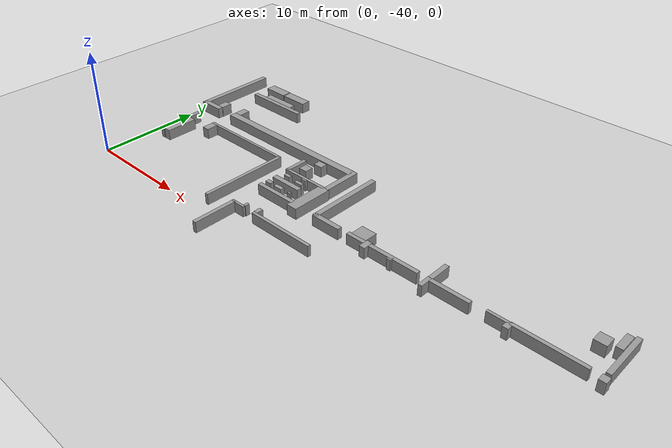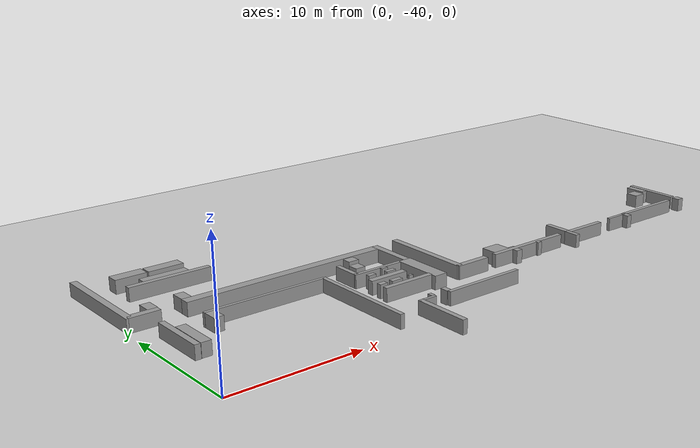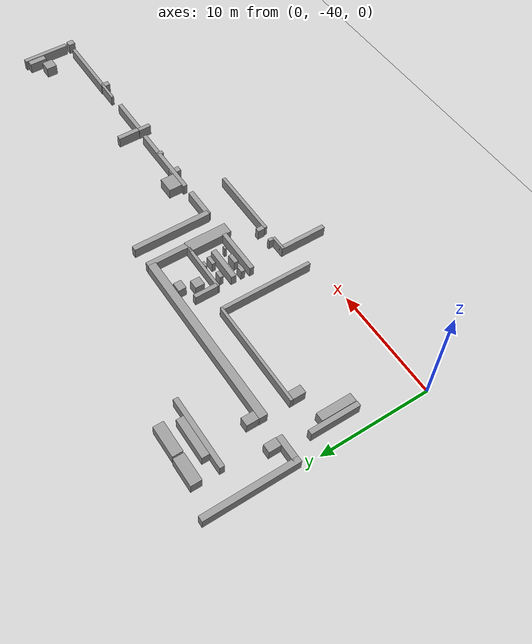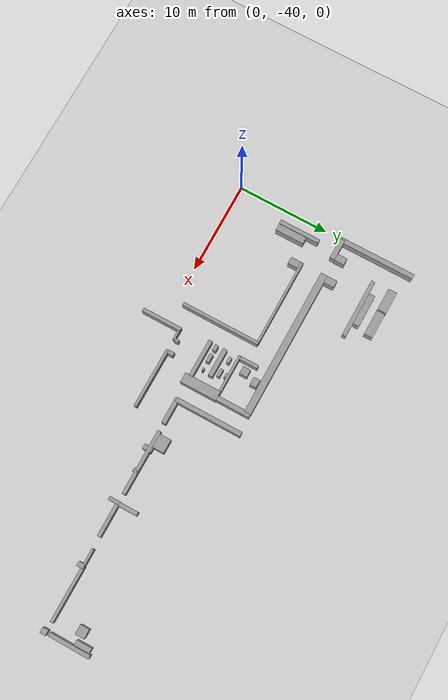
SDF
<sdf version="1.4">
 <world name="default">
  <model name="ground_plane">
   <static>1</static>
   <link name="link">
    <collision name="collision">
     <geometry><plane><normal>0 0 1</normal><size>300 300</size></plane></geometry>
     <surface><friction><ode><mu>100</mu><mu2>50</mu2></ode></friction></surface>
    </collision>
    <visual name="visual">
     <cast_shadows>0</cast_shadows>
     <geometry><plane><normal>0 0 1</normal><size>300 300</size></plane></geometry>
     <material>
      <script><uri>file://media/materials/scripts/gazebo.material</uri><name>Gazebo/Grey</name></script>
     </material>
    </visual>
    <velocity_decay><linear>0</linear><angular>0</angular></velocity_decay>
   </link>
  </model>
  <model name="wall_rect3549">
   <static>1</static>
   <link name="link">
    <pose>0.3355228053052943 -24.17355341555266 0 0 -0 0</pose>
    <collision name="collision">
     <geometry><box><size>0.51425949219405 8.382429670205694 2.0</size></box></geometry>
    </collision>
    <visual name="visual">
     <cast_shadows>0</cast_shadows>
     <geometry><box><size>0.51425949219405 8.382429670205694 2.0</size></box></geometry>
     <material>
      <script>
       <uri>model://grey_wall/materials/scripts</uri>
       <uri>model://grey_wall/materials/textures</uri>
       <name>vrc/grey_wall</name>
      </script>
     </material>
    </visual>
    <velocity_decay><linear>0</linear><angular>0</angular></velocity_decay>
   </link>
  </model>
  <model name="wall_rect3551">
   <static>1</static>
   <link name="link">
    <pose>1.4128834767488212 -28.0947834555603 0 0 -0 0</pose>
    <collision name="collision">
     <geometry><box><size>2.308999173986113 0.5399724700435873 2.0</size></box></geometry>
    </collision>
    <visual name="visual">
     <cast_shadows>0</cast_shadows>
     <geometry><box><size>2.308999173986113 0.5399724700435873 2.0</size></box></geometry>
     <material>
      <script>
       <uri>model://grey_wall/materials/scripts</uri>
       <uri>model://grey_wall/materials/textures</uri>
       <name>vrc/grey_wall</name>
      </script>
     </material>
    </visual>
    <velocity_decay><linear>0</linear><angular>0</angular></velocity_decay>
   </link>
  </model>
  <model name="wall_rect3553">
   <static>1</static>
   <link name="link">
    <pose>12.551124197483915 -28.017644500412786 0 0 -0 0</pose>
    <collision name="collision">
     <geometry><box><size>16.246724077019657 0.7456762064442906 2.0</size></box></geometry>
    </collision>
    <visual name="visual">
     <cast_shadows>0</cast_shadows>
     <geometry><box><size>16.246724077019657 0.7456762064442906 2.0</size></box></geometry>
     <material>
      <script>
       <uri>model://grey_wall/materials/scripts</uri>
       <uri>model://grey_wall/materials/textures</uri>
       <name>vrc/grey_wall</name>
      </script>
     </material>
    </visual>
    <velocity_decay><linear>0</linear><angular>0</angular></velocity_decay>
   </link>
  </model>
  <model name="wall_rect3555">
   <static>1</static>
   <link name="link">
    <pose>9.212926984130641 -30.550371205874438 0 0 -0 0</pose>
    <collision name="collision">
     <geometry><box><size>9.603795560087166 0.25712974249720855 2.0</size></box></geometry>
    </collision>
    <visual name="visual">
     <cast_shadows>0</cast_shadows>
     <geometry><box><size>9.603795560087166 0.25712974249720855 2.0</size></box></geometry>
     <material>
      <script>
       <uri>model://grey_wall/materials/scripts</uri>
       <uri>model://grey_wall/materials/textures</uri>
       <name>vrc/grey_wall</name>
      </script>
     </material>
    </visual>
    <velocity_decay><linear>0</linear><angular>0</angular></velocity_decay>
   </link>
  </model>
  <model name="wall_rect3557">
   <static>1</static>
   <link name="link">
    <pose>1.608315158459961 -32.37599107447106 0 0 -0 0</pose>
    <collision name="collision">
     <geometry><box><size>0.4371205874439697 4.4740575986473905 2.0</size></box></geometry>
    </collision>
    <visual name="visual">
     <cast_shadows>0</cast_shadows>
     <geometry><box><size>0.4371205874439697 4.4740575986473905 2.0</size></box></geometry>
     <material>
      <script>
       <uri>model://grey_wall/materials/scripts</uri>
       <uri>model://grey_wall/materials/textures</uri>
       <name>vrc/grey_wall</name>
      </script>
     </material>
    </visual>
    <velocity_decay><linear>0</linear><angular>0</angular></velocity_decay>
   </link>
  </model>
  <model name="wall_rect3559">
   <static>1</static>
   <link name="link">
    <pose>2.235430984786672 -33.01002779274302 0 0 -0 0</pose>
    <collision name="collision">
     <geometry><box><size>0.7506231462295126 3.1391887036031356 2.0</size></box></geometry>
    </collision>
    <visual name="visual">
     <cast_shadows>0</cast_shadows>
     <geometry><box><size>0.7506231462295126 3.1391887036031356 2.0</size></box></geometry>
     <material>
      <script>
       <uri>model://grey_wall/materials/scripts</uri>
       <uri>model://grey_wall/materials/textures</uri>
       <name>vrc/grey_wall</name>
      </script>
     </material>
    </visual>
    <velocity_decay><linear>0</linear><angular>0</angular></velocity_decay>
   </link>
  </model>
  <model name="wall_rect3561">
   <static>1</static>
   <link name="link">
    <pose>4.7867030267328845 -31.250355715864185 0 0 -0 0</pose>
    <collision name="collision">
     <geometry><box><size>0.7456762064442906 1.141013234581248 2.0</size></box></geometry>
    </collision>
    <visual name="visual">
     <cast_shadows>0</cast_shadows>
     <geometry><box><size>0.7456762064442906 1.141013234581248 2.0</size></box></geometry>
     <material>
      <script>
       <uri>model://grey_wall/materials/scripts</uri>
       <uri>model://grey_wall/materials/textures</uri>
       <name>vrc/grey_wall</name>
      </script>
     </material>
    </visual>
    <velocity_decay><linear>0</linear><angular>0</angular></velocity_decay>
   </link>
  </model>
  <model name="wall_rect3563">
   <static>1</static>
   <link name="link">
    <pose>4.829589656200969 -27.093271388651523 0 0 -0 0</pose>
    <collision name="collision">
     <geometry><box><size>0.7713892634897902 1.1056578531400154 2.0</size></box></geometry>
    </collision>
    <visual name="visual">
     <cast_shadows>0</cast_shadows>
     <geometry><box><size>0.7713892634897902 1.1056578531400154 2.0</size></box></geometry>
     <material>
      <script>
       <uri>model://grey_wall/materials/scripts</uri>
       <uri>model://grey_wall/materials/textures</uri>
       <name>vrc/grey_wall</name>
      </script>
     </material>
    </visual>
    <velocity_decay><linear>0</linear><angular>0</angular></velocity_decay>
   </link>
  </model>
  <model name="wall_rect3565">
   <static>1</static>
   <link name="link">
    <pose>2.2303731346561024 -27.28831880435408 0 0 -0 0</pose>
    <collision name="collision">
     <geometry><box><size>0.7456762064442906 1.1056578531400154 2.0</size></box></geometry>
    </collision>
    <visual name="visual">
     <cast_shadows>0</cast_shadows>
     <geometry><box><size>0.7456762064442906 1.1056578531400154 2.0</size></box></geometry>
     <material>
      <script>
       <uri>model://grey_wall/materials/scripts</uri>
       <uri>model://grey_wall/materials/textures</uri>
       <name>vrc/grey_wall</name>
      </script>
     </material>
    </visual>
    <velocity_decay><linear>0</linear><angular>0</angular></velocity_decay>
   </link>
  </model>
  <model name="wall_rect3567">
   <static>1</static>
   <link name="link">
    <pose>5.915773474205191 -23.313997835934334 0 0 -0 0</pose>
    <collision name="collision">
     <geometry><box><size>6.428243598428378 0.4371205874439697 2.0</size></box></geometry>
    </collision>
    <visual name="visual">
     <cast_shadows>0</cast_shadows>
     <geometry><box><size>6.428243598428378 0.4371205874439697 2.0</size></box></geometry>
     <material>
      <script>
       <uri>model://grey_wall/materials/scripts</uri>
       <uri>model://grey_wall/materials/textures</uri>
       <name>vrc/grey_wall</name>
      </script>
     </material>
    </visual>
    <velocity_decay><linear>0</linear><angular>0</angular></velocity_decay>
   </link>
  </model>
  <model name="wall_rect3569">
   <static>1</static>
   <link name="link">
    <pose>5.812007828592867 -22.76557894732295 0 0 -0 0</pose>
    <collision name="collision">
     <geometry><box><size>3.5741034819080784 0.6685373304927421 2.0</size></box></geometry>
    </collision>
    <visual name="visual">
     <cast_shadows>0</cast_shadows>
     <geometry><box><size>3.5741034819080784 0.6685373304927421 2.0</size></box></geometry>
     <material>
      <script>
       <uri>model://grey_wall/materials/scripts</uri>
       <uri>model://grey_wall/materials/textures</uri>
       <name>vrc/grey_wall</name>
      </script>
     </material>
    </visual>
    <velocity_decay><linear>0</linear><angular>0</angular></velocity_decay>
   </link>
  </model>
  <model name="wall_rect3582">
   <static>1</static>
   <link name="link">
    <pose>3.8804151049162914 -21.13242839227085 0 0 -0 0</pose>
    <collision name="collision">
     <geometry><box><size>2.442732499726234 0.9770929998904935 2.0</size></box></geometry>
    </collision>
    <visual name="visual">
     <cast_shadows>0</cast_shadows>
     <geometry><box><size>2.442732499726234 0.9770929998904935 2.0</size></box></geometry>
     <material>
      <script>
       <uri>model://grey_wall/materials/scripts</uri>
       <uri>model://grey_wall/materials/textures</uri>
       <name>vrc/grey_wall</name>
      </script>
     </material>
    </visual>
    <velocity_decay><linear>0</linear><angular>0</angular></velocity_decay>
   </link>
  </model>
  <model name="wall_rect3584">
   <static>1</static>
   <link name="link">
    <pose>6.6126079827946045 -21.16255144047736 0 0 -0 0</pose>
    <collision name="collision">
     <geometry><box><size>2.7770013773617763 0.925667029792153 2.0</size></box></geometry>
    </collision>
    <visual name="visual">
     <cast_shadows>0</cast_shadows>
     <geometry><box><size>2.7770013773617763 0.925667029792153 2.0</size></box></geometry>
     <material>
      <script>
       <uri>model://grey_wall/materials/scripts</uri>
       <uri>model://grey_wall/materials/textures</uri>
       <name>vrc/grey_wall</name>
      </script>
     </material>
    </visual>
    <velocity_decay><linear>0</linear><angular>0</angular></velocity_decay>
   </link>
  </model>
  <model name="wall_rect3586">
   <static>1</static>
   <link name="link">
    <pose>16.12328997018416 -30.383238512967655 0 0 -0 0</pose>
    <collision name="collision">
     <geometry><box><size>0.35998164669572486 2.134176895125179 2.0</size></box></geometry>
    </collision>
    <visual name="visual">
     <cast_shadows>0</cast_shadows>
     <geometry><box><size>0.35998164669572486 2.134176895125179 2.0</size></box></geometry>
     <material>
      <script>
       <uri>model://grey_wall/materials/scripts</uri>
       <uri>model://grey_wall/materials/textures</uri>
       <name>vrc/grey_wall</name>
      </script>
     </material>
    </visual>
    <velocity_decay><linear>0</linear><angular>0</angular></velocity_decay>
   </link>
  </model>
  <model name="wall_rect3588">
   <static>1</static>
   <link name="link">
    <pose>17.64035551211457 -28.853315902542022 0 0 -0 0</pose>
    <collision name="collision">
     <geometry><box><size>0.8742412036864713 0.7199632933914497 2.0</size></box></geometry>
    </collision>
    <visual name="visual">
     <cast_shadows>0</cast_shadows>
     <geometry><box><size>0.8742412036864713 0.7199632933914497 2.0</size></box></geometry>
     <material>
      <script>
       <uri>model://grey_wall/materials/scripts</uri>
       <uri>model://grey_wall/materials/textures</uri>
       <name>vrc/grey_wall</name>
      </script>
     </material>
    </visual>
    <velocity_decay><linear>0</linear><angular>0</angular></velocity_decay>
   </link>
  </model>
  <model name="wall_rect3590">
   <static>1</static>
   <link name="link">
    <pose>17.151809084165652 -30.22896035068548 0 0 -0 0</pose>
    <collision name="collision">
     <geometry><box><size>0.8228152335881308 0.8485281466409716 2.0</size></box></geometry>
    </collision>
    <visual name="visual">
     <cast_shadows>0</cast_shadows>
     <geometry><box><size>0.8228152335881308 0.8485281466409716 2.0</size></box></geometry>
     <material>
      <script>
       <uri>model://grey_wall/materials/scripts</uri>
       <uri>model://grey_wall/materials/textures</uri>
       <name>vrc/grey_wall</name>
      </script>
     </material>
    </visual>
    <velocity_decay><linear>0</linear><angular>0</angular></velocity_decay>
   </link>
  </model>
  <model name="wall_rect3592">
   <static>1</static>
   <link name="link">
    <pose>17.640354972142102 -33.05738726976743 0 0 -0 0</pose>
    <collision name="collision">
     <geometry><box><size>3.0855569819628315 0.4885465071448797 2.0</size></box></geometry>
    </collision>
    <visual name="visual">
     <cast_shadows>0</cast_shadows>
     <geometry><box><size>3.0855569819628315 0.4885465071448797 2.0</size></box></geometry>
     <material>
      <script>
       <uri>model://grey_wall/materials/scripts</uri>
       <uri>model://grey_wall/materials/textures</uri>
       <name>vrc/grey_wall</name>
      </script>
     </material>
    </visual>
    <velocity_decay><linear>0</linear><angular>0</angular></velocity_decay>
   </link>
  </model>
  <model name="wall_rect3594">
   <static>1</static>
   <link name="link">
    <pose>13.976255650181932 -34.76729994397965 0 0 -0 0</pose>
    <collision name="collision">
     <geometry><box><size>0.3342686688461875 8.588133262613738 2.0</size></box></geometry>
    </collision>
    <visual name="visual">
     <cast_shadows>0</cast_shadows>
     <geometry><box><size>0.3342686688461875 8.588133262613738 2.0</size></box></geometry>
     <material>
      <script>
       <uri>model://grey_wall/materials/scripts</uri>
       <uri>model://grey_wall/materials/textures</uri>
       <name>vrc/grey_wall</name>
      </script>
     </material>
    </visual>
    <velocity_decay><linear>0</linear><angular>0</angular></velocity_decay>
   </link>
  </model>
  <model name="wall_rect3596">
   <static>1</static>
   <link name="link">
    <pose>18.090332642480554 -34.76729907642389 0 0 -0 0</pose>
    <collision name="collision">
     <geometry><box><size>4.139788937000836 0.41140760959443246 2.0</size></box></geometry>
    </collision>
    <visual name="visual">
     <cast_shadows>0</cast_shadows>
     <geometry><box><size>4.139788937000836 0.41140760959443246 2.0</size></box></geometry>
     <material>
      <script>
       <uri>model://grey_wall/materials/scripts</uri>
       <uri>model://grey_wall/materials/textures</uri>
       <name>vrc/grey_wall</name>
      </script>
     </material>
    </visual>
    <velocity_decay><linear>0</linear><angular>0</angular></velocity_decay>
   </link>
  </model>
  <model name="wall_rect3598">
   <static>1</static>
   <link name="link">
    <pose>16.431845657580993 -33.983053032424195 0 0 -0 0</pose>
    <collision name="collision">
     <geometry><box><size>0.6171113747936674 0.3856946245452622 2.0</size></box></geometry>
    </collision>
    <visual name="visual">
     <cast_shadows>0</cast_shadows>
     <geometry><box><size>0.6171113747936674 0.3856946245452622 2.0</size></box></geometry>
     <material>
      <script>
       <uri>model://grey_wall/materials/scripts</uri>
       <uri>model://grey_wall/materials/textures</uri>
       <name>vrc/grey_wall</name>
      </script>
     </material>
    </visual>
    <velocity_decay><linear>0</linear><angular>0</angular></velocity_decay>
   </link>
  </model>
  <model name="wall_rect3600">
   <static>1</static>
   <link name="link">
    <pose>17.627498479617515 -34.00876796137426 0 0 -0 0</pose>
    <collision name="collision">
     <geometry><box><size>0.8999541167393121 0.3856946245452622 2.0</size></box></geometry>
    </collision>
    <visual name="visual">
     <cast_shadows>0</cast_shadows>
     <geometry><box><size>0.8999541167393121 0.3856946245452622 2.0</size></box></geometry>
     <material>
      <script>
       <uri>model://grey_wall/materials/scripts</uri>
       <uri>model://grey_wall/materials/textures</uri>
       <name>vrc/grey_wall</name>
      </script>
     </material>
    </visual>
    <velocity_decay><linear>0</linear><angular>0</angular></velocity_decay>
   </link>
  </model>
  <model name="wall_rect3602">
   <static>1</static>
   <link name="link">
    <pose>18.938858956814947 -34.008764977126404 0 0 -0 0</pose>
    <collision name="collision">
     <geometry><box><size>0.3342686688461875 0.17999082334786243 2.0</size></box></geometry>
    </collision>
    <visual name="visual">
     <cast_shadows>0</cast_shadows>
     <geometry><box><size>0.3342686688461875 0.17999082334786243 2.0</size></box></geometry>
     <material>
      <script>
       <uri>model://grey_wall/materials/scripts</uri>
       <uri>model://grey_wall/materials/textures</uri>
       <name>vrc/grey_wall</name>
      </script>
     </material>
    </visual>
    <velocity_decay><linear>0</linear><angular>0</angular></velocity_decay>
   </link>
  </model>
  <model name="wall_rect3604">
   <static>1</static>
   <link name="link">
    <pose>16.88182283834441 -32.1831467500461 0 0 -0 0</pose>
    <collision name="collision">
     <geometry><box><size>0.6428243886413696 0.3342686688461875 2.0</size></box></geometry>
    </collision>
    <visual name="visual">
     <cast_shadows>0</cast_shadows>
     <geometry><box><size>0.6428243886413696 0.3342686688461875 2.0</size></box></geometry>
     <material>
      <script>
       <uri>model://grey_wall/materials/scripts</uri>
       <uri>model://grey_wall/materials/textures</uri>
       <name>vrc/grey_wall</name>
      </script>
     </material>
    </visual>
    <velocity_decay><linear>0</linear><angular>0</angular></velocity_decay>
   </link>
  </model>
  <model name="wall_rect3606">
   <static>1</static>
   <link name="link">
    <pose>18.437457616660872 -32.363137573393956 0 0 -0 0</pose>
    <collision name="collision">
     <geometry><box><size>0.8228152335881308 0.3342686688461875 2.0</size></box></geometry>
    </collision>
    <visual name="visual">
     <cast_shadows>0</cast_shadows>
     <geometry><box><size>0.8228152335881308 0.3342686688461875 2.0</size></box></geometry>
     <material>
      <script>
       <uri>model://grey_wall/materials/scripts</uri>
       <uri>model://grey_wall/materials/textures</uri>
       <name>vrc/grey_wall</name>
      </script>
     </material>
    </visual>
    <velocity_decay><linear>0</linear><angular>0</angular></velocity_decay>
   </link>
  </model>
  <model name="wall_rect3608">
   <static>1</static>
   <link name="link">
    <pose>18.411744311228038 -31.694597244254098 0 0 -0 0</pose>
    <collision name="collision">
     <geometry><box><size>0.51425949219405 0.23141676464767122 2.0</size></box></geometry>
    </collision>
    <visual name="visual">
     <cast_shadows>0</cast_shadows>
     <geometry><box><size>0.51425949219405 0.23141676464767122 2.0</size></box></geometry>
     <material>
      <script>
       <uri>model://grey_wall/materials/scripts</uri>
       <uri>model://grey_wall/materials/textures</uri>
       <name>vrc/grey_wall</name>
      </script>
     </material>
    </visual>
    <velocity_decay><linear>0</linear><angular>0</angular></velocity_decay>
   </link>
  </model>
  <model name="wall_rect3610">
   <static>1</static>
   <link name="link">
    <pose>18.244609508828802 -31.463181815138338 0 0 -0 0</pose>
    <collision name="collision">
     <geometry><box><size>4.55119662579123 0.28284272754637874 2.0</size></box></geometry>
    </collision>
    <visual name="visual">
     <cast_shadows>0</cast_shadows>
     <geometry><box><size>4.55119662579123 0.28284272754637874 2.0</size></box></geometry>
     <material>
      <script>
       <uri>model://grey_wall/materials/scripts</uri>
       <uri>model://grey_wall/materials/textures</uri>
       <name>vrc/grey_wall</name>
      </script>
     </material>
    </visual>
    <velocity_decay><linear>0</linear><angular>0</angular></velocity_decay>
   </link>
  </model>
  <model name="wall_rect3612">
   <static>1</static>
   <link name="link">
    <pose>20.604230237925552 -33.38944780039335 0 0 -0 0</pose>
    <collision name="collision">
     <geometry><box><size>1.0610062336581831 3.9810995236218876 2.0</size></box></geometry>
    </collision>
    <visual name="visual">
     <cast_shadows>0</cast_shadows>
     <geometry><box><size>1.0610062336581831 3.9810995236218876 2.0</size></box></geometry>
     <material>
      <script>
       <uri>model://grey_wall/materials/scripts</uri>
       <uri>model://grey_wall/materials/textures</uri>
       <name>vrc/grey_wall</name>
      </script>
     </material>
    </visual>
    <velocity_decay><linear>0</linear><angular>0</angular></velocity_decay>
   </link>
  </model>
  <model name="wall_rect3614">
   <static>1</static>
   <link name="link">
    <pose>16.4447011277577 -40.128455958801396 0 0 -0 0</pose>
    <collision name="collision">
     <geometry><box><size>0.3856946245452622 4.345492745397869 2.0</size></box></geometry>
    </collision>
    <visual name="visual">
     <cast_shadows>0</cast_shadows>
     <geometry><box><size>0.3856946245452622 4.345492745397869 2.0</size></box></geometry>
     <material>
      <script>
       <uri>model://grey_wall/materials/scripts</uri>
       <uri>model://grey_wall/materials/textures</uri>
       <name>vrc/grey_wall</name>
      </script>
     </material>
    </visual>
    <velocity_decay><linear>0</linear><angular>0</angular></velocity_decay>
   </link>
  </model>
  <model name="wall_rect3616">
   <static>1</static>
   <link name="link">
    <pose>16.98467410537541 -38.0714179684263 0 0 -0 0</pose>
    <collision name="collision">
     <geometry><box><size>1.4142136017337292 0.23141676464767122 2.0</size></box></geometry>
    </collision>
    <visual name="visual">
     <cast_shadows>0</cast_shadows>
     <geometry><box><size>1.4142136017337292 0.23141676464767122 2.0</size></box></geometry>
     <material>
      <script>
       <uri>model://grey_wall/materials/scripts</uri>
       <uri>model://grey_wall/materials/textures</uri>
       <name>vrc/grey_wall</name>
      </script>
     </material>
    </visual>
    <velocity_decay><linear>0</linear><angular>0</angular></velocity_decay>
   </link>
  </model>
  <model name="wall_rect3618">
   <static>1</static>
   <link name="link">
    <pose>22.15389629375136 -38.084272499050904 0 0 -0 0</pose>
    <collision name="collision">
     <geometry><box><size>6.507209892410845 0.30855568379701726 2.0</size></box></geometry>
    </collision>
    <visual name="visual">
     <cast_shadows>0</cast_shadows>
     <geometry><box><size>6.507209892410845 0.30855568379701726 2.0</size></box></geometry>
     <material>
      <script>
       <uri>model://grey_wall/materials/scripts</uri>
       <uri>model://grey_wall/materials/textures</uri>
       <name>vrc/grey_wall</name>
      </script>
     </material>
    </visual>
    <velocity_decay><linear>0</linear><angular>0</angular></velocity_decay>
   </link>
  </model>
  <model name="wall_rect3620">
   <static>1</static>
   <link name="link">
    <pose>17.62749889359641 -37.73714632613171 0 0 -0 0</pose>
    <collision name="collision">
     <geometry><box><size>0.28284272754637874 0.4371205874439697 2.0</size></box></geometry>
    </collision>
    <visual name="visual">
     <cast_shadows>0</cast_shadows>
     <geometry><box><size>0.28284272754637874 0.4371205874439697 2.0</size></box></geometry>
     <material>
      <script>
       <uri>model://grey_wall/materials/scripts</uri>
       <uri>model://grey_wall/materials/textures</uri>
       <name>vrc/grey_wall</name>
      </script>
     </material>
    </visual>
    <velocity_decay><linear>0</linear><angular>0</angular></velocity_decay>
   </link>
  </model>
  <model name="wall_rect3622">
   <static>1</static>
   <link name="link">
    <pose>19.028854685272726 -37.63429679421225 0 0 -0 0</pose>
    <collision name="collision">
     <geometry><box><size>0.41140760959443246 0.6428243886413696 2.0</size></box></geometry>
    </collision>
    <visual name="visual">
     <cast_shadows>0</cast_shadows>
     <geometry><box><size>0.41140760959443246 0.6428243886413696 2.0</size></box></geometry>
     <material>
      <script>
       <uri>model://grey_wall/materials/scripts</uri>
       <uri>model://grey_wall/materials/textures</uri>
       <name>vrc/grey_wall</name>
      </script>
     </material>
    </visual>
    <velocity_decay><linear>0</linear><angular>0</angular></velocity_decay>
   </link>
  </model>
  <model name="wall_rect3624">
   <static>1</static>
   <link name="link">
    <pose>22.87294491337654 -31.206051910649386 0 0 -0 0</pose>
    <collision name="collision">
     <geometry><box><size>0.4885465071448797 7.328197499178701 2.0</size></box></geometry>
    </collision>
    <visual name="visual">
     <cast_shadows>0</cast_shadows>
     <geometry><box><size>0.4885465071448797 7.328197499178701 2.0</size></box></geometry>
     <material>
      <script>
       <uri>model://grey_wall/materials/scripts</uri>
       <uri>model://grey_wall/materials/textures</uri>
       <name>vrc/grey_wall</name>
      </script>
     </material>
    </visual>
    <velocity_decay><linear>0</linear><angular>0</angular></velocity_decay>
   </link>
  </model>
  <model name="wall_rect3626">
   <static>1</static>
   <link name="link">
    <pose>20.803051272833905 -29.570425981401762 0 0 -0 0</pose>
    <collision name="collision">
     <geometry><box><size>0.51425949219405 3.7998165101550465 2.0</size></box></geometry>
    </collision>
    <visual name="visual">
     <cast_shadows>0</cast_shadows>
     <geometry><box><size>0.51425949219405 3.7998165101550465 2.0</size></box></geometry>
     <material>
      <script>
       <uri>model://grey_wall/materials/scripts</uri>
       <uri>model://grey_wall/materials/textures</uri>
       <name>vrc/grey_wall</name>
      </script>
     </material>
    </visual>
    <velocity_decay><linear>0</linear><angular>0</angular></velocity_decay>
   </link>
  </model>
  <model name="wall_rect3628">
   <static>1</static>
   <link name="link">
    <pose>24.13930872148414 -34.786583484027645 0 0 -0 0</pose>
    <collision name="collision">
     <geometry><box><size>2.8541404045056167 0.46283352929534244 2.0</size></box></geometry>
    </collision>
    <visual name="visual">
     <cast_shadows>0</cast_shadows>
     <geometry><box><size>2.8541404045056167 0.46283352929534244 2.0</size></box></geometry>
     <material>
      <script>
       <uri>model://grey_wall/materials/scripts</uri>
       <uri>model://grey_wall/materials/textures</uri>
       <name>vrc/grey_wall</name>
      </script>
     </material>
    </visual>
    <velocity_decay><linear>0</linear><angular>0</angular></velocity_decay>
   </link>
  </model>
  <model name="wall_rect3630">
   <static>1</static>
   <link name="link">
    <pose>27.417712875326767 -33.94448604232362 0 0 -0 0</pose>
    <collision name="collision">
     <geometry><box><size>1.4913524848849107 1.2856487484842074 2.0</size></box></geometry>
    </collision>
    <visual name="visual">
     <cast_shadows>0</cast_shadows>
     <geometry><box><size>1.4913524848849107 1.2856487484842074 2.0</size></box></geometry>
     <material>
      <script>
       <uri>model://grey_wall/materials/scripts</uri>
       <uri>model://grey_wall/materials/textures</uri>
       <name>vrc/grey_wall</name>
      </script>
     </material>
    </visual>
    <velocity_decay><linear>0</linear><angular>0</angular></velocity_decay>
   </link>
  </model>
  <model name="wall_rect3632">
   <static>1</static>
   <link name="link">
    <pose>28.46484746821668 -34.91339907126175 0 0 -0 0</pose>
    <collision name="collision">
     <geometry><box><size>0.5399724700435873 0.9513800868376526 2.0</size></box></geometry>
    </collision>
    <visual name="visual">
     <cast_shadows>0</cast_shadows>
     <geometry><box><size>0.5399724700435873 0.9513800868376526 2.0</size></box></geometry>
     <material>
      <script>
       <uri>model://grey_wall/materials/scripts</uri>
       <uri>model://grey_wall/materials/textures</uri>
       <name>vrc/grey_wall</name>
      </script>
     </material>
    </visual>
    <velocity_decay><linear>0</linear><angular>0</angular></velocity_decay>
   </link>
  </model>
  <model name="wall_rect3634">
   <static>1</static>
   <link name="link">
    <pose>30.938619849805573 -34.89852625673733 0 0 -0 0</pose>
    <collision name="collision">
     <geometry><box><size>0.3856946245452622 0.46283352929534244 2.0</size></box></geometry>
    </collision>
    <visual name="visual">
     <cast_shadows>0</cast_shadows>
     <geometry><box><size>0.3856946245452622 0.46283352929534244 2.0</size></box></geometry>
     <material>
      <script>
       <uri>model://grey_wall/materials/scripts</uri>
       <uri>model://grey_wall/materials/textures</uri>
       <name>vrc/grey_wall</name>
      </script>
     </material>
    </visual>
    <velocity_decay><linear>0</linear><angular>0</angular></velocity_decay>
   </link>
  </model>
  <model name="wall_rect3636">
   <static>1</static>
   <link name="link">
    <pose>29.96731723029833 -34.754440424009424 0 0 -0 0</pose>
    <collision name="collision">
     <geometry><box><size>7.092014188748601 0.3856946245452622 2.0</size></box></geometry>
    </collision>
    <visual name="visual">
     <cast_shadows>0</cast_shadows>
     <geometry><box><size>7.092014188748601 0.3856946245452622 2.0</size></box></geometry>
     <material>
      <script>
       <uri>model://grey_wall/materials/scripts</uri>
       <uri>model://grey_wall/materials/textures</uri>
       <name>vrc/grey_wall</name>
      </script>
     </material>
    </visual>
    <velocity_decay><linear>0</linear><angular>0</angular></velocity_decay>
   </link>
  </model>
  <model name="wall_rect3638">
   <static>1</static>
   <link name="link">
    <pose>34.48162260575307 -35.22909732370205 0 0 -0 0</pose>
    <collision name="collision">
     <geometry><box><size>0.37762822060280077 1.1829305774674383 2.0</size></box></geometry>
    </collision>
    <visual name="visual">
     <cast_shadows>0</cast_shadows>
     <geometry><box><size>0.37762822060280077 1.1829305774674383 2.0</size></box></geometry>
     <material>
      <script>
       <uri>model://grey_wall/materials/scripts</uri>
       <uri>model://grey_wall/materials/textures</uri>
       <name>vrc/grey_wall</name>
      </script>
     </material>
    </visual>
    <velocity_decay><linear>0</linear><angular>0</angular></velocity_decay>
   </link>
  </model>
  <model name="wall_rect3640">
   <static>1</static>
   <link name="link">
    <pose>36.42818110561451 -34.80586956194625 0 0 -0 0</pose>
    <collision name="collision">
     <geometry><box><size>3.5419623765901918 0.3856946245452622 2.0</size></box></geometry>
    </collision>
    <visual name="visual">
     <cast_shadows>0</cast_shadows>
     <geometry><box><size>3.5419623765901918 0.3856946245452622 2.0</size></box></geometry>
     <material>
      <script>
       <uri>model://grey_wall/materials/scripts</uri>
       <uri>model://grey_wall/materials/textures</uri>
       <name>vrc/grey_wall</name>
      </script>
     </material>
    </visual>
    <velocity_decay><linear>0</linear><angular>0</angular></velocity_decay>
   </link>
  </model>
  <model name="wall_rect3642">
   <static>1</static>
   <link name="link">
    <pose>34.541492053369154 -33.61664290907792 0 0 -0 0</pose>
    <collision name="collision">
     <geometry><box><size>0.4371205874439697 2.0313249549284977 2.0</size></box></geometry>
    </collision>
    <visual name="visual">
     <cast_shadows>0</cast_shadows>
     <geometry><box><size>0.4371205874439697 2.0313249549284977 2.0</size></box></geometry>
     <material>
      <script>
       <uri>model://grey_wall/materials/scripts</uri>
       <uri>model://grey_wall/materials/textures</uri>
       <name>vrc/grey_wall</name>
      </script>
     </material>
    </visual>
    <velocity_decay><linear>0</linear><angular>0</angular></velocity_decay>
   </link>
  </model>
  <model name="wall_rect3644">
   <static>1</static>
   <link name="link">
    <pose>40.486331784860276 -34.69016014287528 0 0 -0 0</pose>
    <collision name="collision">
     <geometry><box><size>2.0313249549284977 0.25712974249720855 2.0</size></box></geometry>
    </collision>
    <visual name="visual">
     <cast_shadows>0</cast_shadows>
     <geometry><box><size>2.0313249549284977 0.25712974249720855 2.0</size></box></geometry>
     <material>
      <script>
       <uri>model://grey_wall/materials/scripts</uri>
       <uri>model://grey_wall/materials/textures</uri>
       <name>vrc/grey_wall</name>
      </script>
     </material>
    </visual>
    <velocity_decay><linear>0</linear><angular>0</angular></velocity_decay>
   </link>
  </model>
  <model name="wall_rect3646">
   <static>1</static>
   <link name="link">
    <pose>41.36057562001259 -34.96014742544366 0 0 -0 0</pose>
    <collision name="collision">
     <geometry><box><size>0.4885465071448797 0.694250351540077 2.0</size></box></geometry>
    </collision>
    <visual name="visual">
     <cast_shadows>0</cast_shadows>
     <geometry><box><size>0.4885465071448797 0.694250351540077 2.0</size></box></geometry>
     <material>
      <script>
       <uri>model://grey_wall/materials/scripts</uri>
       <uri>model://grey_wall/materials/textures</uri>
       <name>vrc/grey_wall</name>
      </script>
     </material>
    </visual>
    <velocity_decay><linear>0</linear><angular>0</angular></velocity_decay>
   </link>
  </model>
  <model name="wall_rect3648">
   <static>1</static>
   <link name="link">
    <pose>44.34328105415874 -34.67730334796611 0 0 -0 0</pose>
    <collision name="collision">
     <geometry><box><size>5.99112321257413 0.3342686688461875 2.0</size></box></geometry>
    </collision>
    <visual name="visual">
     <cast_shadows>0</cast_shadows>
     <geometry><box><size>5.99112321257413 0.3342686688461875 2.0</size></box></geometry>
     <material>
      <script>
       <uri>model://grey_wall/materials/scripts</uri>
       <uri>model://grey_wall/materials/textures</uri>
       <name>vrc/grey_wall</name>
      </script>
     </material>
    </visual>
    <velocity_decay><linear>0</linear><angular>0</angular></velocity_decay>
   </link>
  </model>
  <model name="wall_rect3650">
   <static>1</static>
   <link name="link">
    <pose>48.380216715430976 -34.85729613681376 0 0 -0 0</pose>
    <collision name="collision">
     <geometry><box><size>0.5913984329422949 0.6428243886413696 2.0</size></box></geometry>
    </collision>
    <visual name="visual">
     <cast_shadows>0</cast_shadows>
     <geometry><box><size>0.5913984329422949 0.6428243886413696 2.0</size></box></geometry>
     <material>
      <script>
       <uri>model://grey_wall/materials/scripts</uri>
       <uri>model://grey_wall/materials/textures</uri>
       <name>vrc/grey_wall</name>
      </script>
     </material>
    </visual>
    <velocity_decay><linear>0</linear><angular>0</angular></velocity_decay>
   </link>
  </model>
  <model name="wall_rect3652">
   <static>1</static>
   <link name="link">
    <pose>48.3673588909743 -32.093149642858606 0 0 -0 0</pose>
    <collision name="collision">
     <geometry><box><size>0.41140760959443246 4.42263155655272 2.0</size></box></geometry>
    </collision>
    <visual name="visual">
     <cast_shadows>0</cast_shadows>
     <geometry><box><size>0.41140760959443246 4.42263155655272 2.0</size></box></geometry>
     <material>
      <script>
       <uri>model://grey_wall/materials/scripts</uri>
       <uri>model://grey_wall/materials/textures</uri>
       <name>vrc/grey_wall</name>
      </script>
     </material>
    </visual>
    <velocity_decay><linear>0</linear><angular>0</angular></velocity_decay>
   </link>
  </model>
  <model name="wall_rect3654">
   <static>1</static>
   <link name="link">
    <pose>47.827387752862805 -30.923211990959853 0 0 -0 0</pose>
    <collision name="collision">
     <geometry><box><size>0.5656854478931246 1.671343308232773 2.0</size></box></geometry>
    </collision>
    <visual name="visual">
     <cast_shadows>0</cast_shadows>
     <geometry><box><size>0.5656854478931246 1.671343308232773 2.0</size></box></geometry>
     <material>
      <script>
       <uri>model://grey_wall/materials/scripts</uri>
       <uri>model://grey_wall/materials/textures</uri>
       <name>vrc/grey_wall</name>
      </script>
     </material>
    </visual>
    <velocity_decay><linear>0</linear><angular>0</angular></velocity_decay>
   </link>
  </model>
  <model name="wall_rect3656">
   <static>1</static>
   <link name="link">
    <pose>46.67030490517472 -31.66888830539864 0 0 -0 0</pose>
    <collision name="collision">
     <geometry><box><size>1.0285189699888342 1.0028060569359931 2.0</size></box></geometry>
    </collision>
    <visual name="visual">
     <cast_shadows>0</cast_shadows>
     <geometry><box><size>1.0285189699888342 1.0028060569359931 2.0</size></box></geometry>
     <material>
      <script>
       <uri>model://grey_wall/materials/scripts</uri>
       <uri>model://grey_wall/materials/textures</uri>
       <name>vrc/grey_wall</name>
      </script>
     </material>
    </visual>
    <velocity_decay><linear>0</linear><angular>0</angular></velocity_decay>
   </link>
  </model>
 </world>
</sdf>
